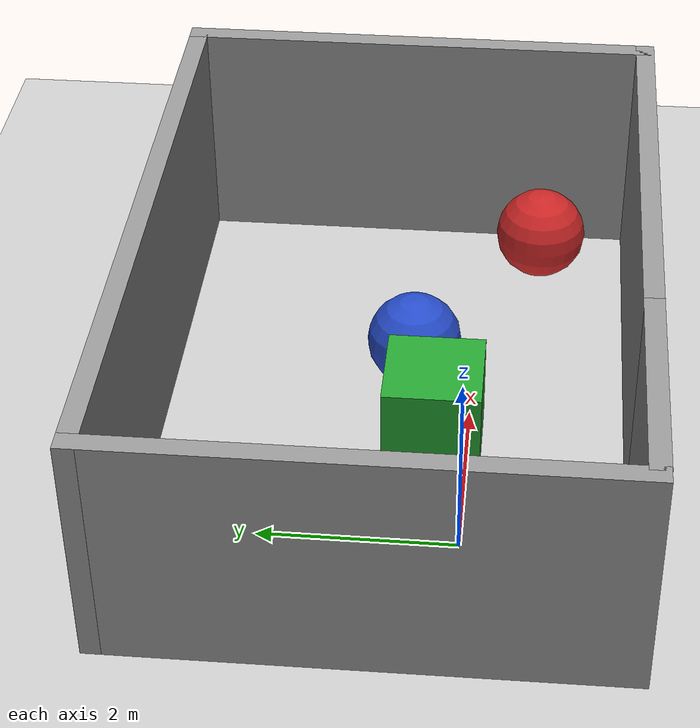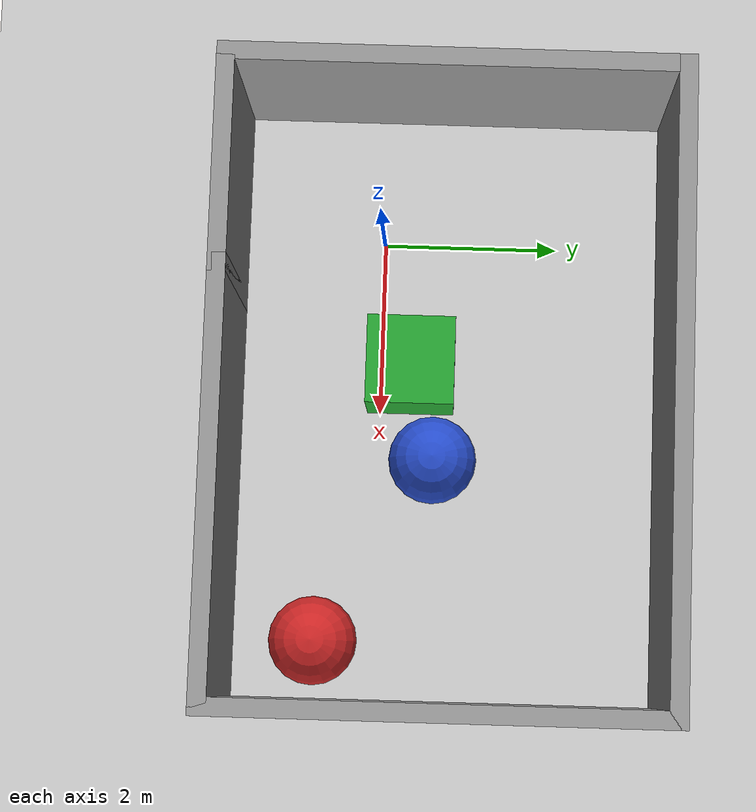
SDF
<sdf version="1.4">
 <world name="default">
  <physics type="ode">
   <gravity>0 0 -9.81</gravity>
   <ode>
    <solver><type>quick</type><iters>20</iters><sor>1</sor></solver>
    <constraints>
     <cfm>0</cfm>
     <erp>0.2</erp>
     <contact_max_correcting_vel>100</contact_max_correcting_vel>
     <contact_surface_layer>0</contact_surface_layer>
    </constraints>
   </ode>
   <real_time_update_rate>1000</real_time_update_rate>
   <max_step_size>0.001</max_step_size>
   <real_time_factor>1</real_time_factor>
  </physics>
  <light name="light1" type="directional">
   <pose>-2 0 4 0 -0 0</pose>
   <diffuse>1 1 1 1</diffuse>
   <specular>0.1 0.1 0.1 1</specular>
   <attenuation>
    <range>20</range>
    <constant>0.9</constant>
    <linear>0.01</linear>
    <quadratic>0.001</quadratic>
   </attenuation>
   <direction>0.2 0 -1</direction>
  </light>
  <model name="ground_plane">
   <static>1</static>
   <link name="link">
    <collision name="collision">
     <geometry><plane><normal>0 0 1</normal><size>100 100</size></plane></geometry>
     <surface><friction><ode><mu>100</mu><mu2>50</mu2></ode></friction></surface>
    </collision>
    <visual name="visual">
     <cast_shadows>0</cast_shadows>
     <geometry><plane><normal>0 0 1</normal><size>100 100</size></plane></geometry>
     <material>
      <script><uri>file://media/materials/scripts/gazebo.material</uri><name>Gazebo/Grey</name></script>
     </material>
    </visual>
    <velocity_decay><linear>0</linear><angular>0</angular></velocity_decay>
   </link>
  </model>
  <model name="table_with_objects">
   <link name="Wall_0">
    <collision name="Wall_0_Collision">
     <geometry><box><size>2.37137 0.2 2.5</size></box></geometry>
     <pose>0 0 1.25 0 -0 0</pose>
    </collision>
    <visual name="Wall_0_Visual">
     <pose>0 0 1.25 0 -0 0</pose>
     <geometry><box><size>2.37137 0.2 2.5</size></box></geometry>
     <material>
      <script><uri>file://media/materials/scripts/gazebo.material</uri><name>Gazebo/Grey</name></script>
     </material>
    </visual>
    <velocity_decay><linear>0</linear><angular>0</angular></velocity_decay>
    <pose>-0.355626 -1.71037 0 0 -0 0</pose>
   </link>
   <link name="Wall_1">
    <collision name="Wall_1_Collision">
     <geometry><box><size>4.88038 0.2 2.5</size></box></geometry>
     <pose>0 0 1.25 0 -0 0</pose>
    </collision>
    <visual name="Wall_1_Visual">
     <pose>0 0 1.25 0 -0 0</pose>
     <geometry><box><size>4.88038 0.2 2.5</size></box></geometry>
     <material>
      <script><uri>file://media/materials/scripts/gazebo.material</uri><name>Gazebo/Grey</name></script>
     </material>
    </visual>
    <velocity_decay><linear>0</linear><angular>0</angular></velocity_decay>
    <pose>3.07025 -1.71037 0 0 -0 0</pose>
   </link>
   <link name="Wall_2">
    <collision name="Wall_2_Collision">
     <geometry><box><size>5.19178 0.2 2.5</size></box></geometry>
     <pose>0 0 1.25 0 -0 0</pose>
    </collision>
    <visual name="Wall_2_Visual">
     <pose>0 0 1.25 0 -0 0</pose>
     <geometry><box><size>5.19178 0.2 2.5</size></box></geometry>
     <material>
      <script><uri>file://media/materials/scripts/gazebo.material</uri><name>Gazebo/Grey</name></script>
     </material>
    </visual>
    <velocity_decay><linear>0</linear><angular>0</angular></velocity_decay>
    <pose>5.41044 0.78552 0 0 -0 1.5708</pose>
   </link>
   <link name="Wall_3">
    <collision name="Wall_3_Collision">
     <geometry><box><size>7.19952 0.2 2.5</size></box></geometry>
     <pose>0 0 1.25 0 -0 0</pose>
    </collision>
    <visual name="Wall_3_Visual">
     <pose>0 0 1.25 0 -0 0</pose>
     <geometry><box><size>7.19952 0.2 2.5</size></box></geometry>
     <material>
      <script><uri>file://media/materials/scripts/gazebo.material</uri><name>Gazebo/Grey</name></script>
     </material>
    </visual>
    <velocity_decay><linear>0</linear><angular>0</angular></velocity_decay>
    <pose>1.91068 3.28141 0 0 -0 3.14159</pose>
   </link>
   <link name="Wall_4">
    <collision name="Wall_4_Collision">
     <geometry><box><size>5.18817 0.2 2.5</size></box></geometry>
     <pose>0 0 1.25 0 -0 0</pose>
    </collision>
    <visual name="Wall_4_Visual">
     <pose>0 0 1.25 0 -0 0</pose>
     <geometry><box><size>5.18817 0.2 2.5</size></box></geometry>
     <material>
      <script><uri>file://media/materials/scripts/gazebo.material</uri><name>Gazebo/Grey</name></script>
     </material>
    </visual>
    <velocity_decay><linear>0</linear><angular>0</angular></velocity_decay>
    <pose>-1.58908 0.787327 0 0 0 -1.5708</pose>
   </link>
   <static>1</static>
  </model>
  <scene><ambient>0.4 0.4 0.4 1</ambient><background>0.7 0.7 0.7 1</background><shadows>1</shadows></scene>
  <spherical_coordinates>
   <surface_model>EARTH_WGS84</surface_model>
   <latitude_deg>0</latitude_deg>
   <longitude_deg>0</longitude_deg>
   <elevation>0</elevation>
   <heading_deg>0</heading_deg>
  </spherical_coordinates>
  <model name="unit_sphere_3">
   <pose>2.57788 0.62731 0.5 0 -0 0</pose>
   <link name="link">
    <inertial>
     <mass>1</mass>
     <inertia><ixx>1</ixx><ixy>0</ixy><ixz>0</ixz><iyy>1</iyy><iyz>0</iyz><izz>1</izz></inertia>
    </inertial>
    <collision name="collision"><geometry><sphere><radius>0.5</radius></sphere></geometry></collision>
    <visual name="visual">
     <geometry><sphere><radius>0.5</radius></sphere></geometry>
     <material>
      <script><uri>file://media/materials/scripts/gazebo.material</uri><name>Gazebo/Blue</name></script>
     </material>
    </visual>
    <velocity_decay><linear>0</linear><angular>0</angular></velocity_decay>
   </link>
   <static>0</static>
  </model>
  <model name="unit_sphere_4">
   <pose>4.66135 -0.662211 0.499991 2e-06 -1e-06 1.1e-05</pose>
   <link name="link">
    <inertial>
     <mass>1</mass>
     <inertia><ixx>1</ixx><ixy>0</ixy><ixz>0</ixz><iyy>1</iyy><iyz>0</iyz><izz>1</izz></inertia>
    </inertial>
    <collision name="collision"><geometry><sphere><radius>0.5</radius></sphere></geometry></collision>
    <visual name="visual">
     <geometry><sphere><radius>0.5</radius></sphere></geometry>
     <material>
      <script><uri>file://media/materials/scripts/gazebo.material</uri><name>Gazebo/Red</name></script>
     </material>
    </visual>
    <velocity_decay><linear>0</linear><angular>0</angular></velocity_decay>
   </link>
   <static>0</static>
  </model>
  <model name="unit_box">
   <pose>1.49029 0.351397 0.5 1e-06 -0 -1e-06</pose>
   <link name="link">
    <inertial>
     <mass>1</mass>
     <inertia>
      <ixx>0.166667</ixx>
      <ixy>0</ixy>
      <ixz>0</ixz>
      <iyy>0.166667</iyy>
      <iyz>0</iyz>
      <izz>0.166667</izz>
     </inertia>
    </inertial>
    <collision name="collision"><geometry><box><size>1 1 1</size></box></geometry></collision>
    <visual name="visual">
     <geometry><box><size>1 1 1</size></box></geometry>
     <material>
      <script><name>Gazebo/Green</name><uri>file://media/materials/scripts/gazebo.material</uri></script>
     </material>
    </visual>
   </link>
  </model>
 </world>
</sdf>
